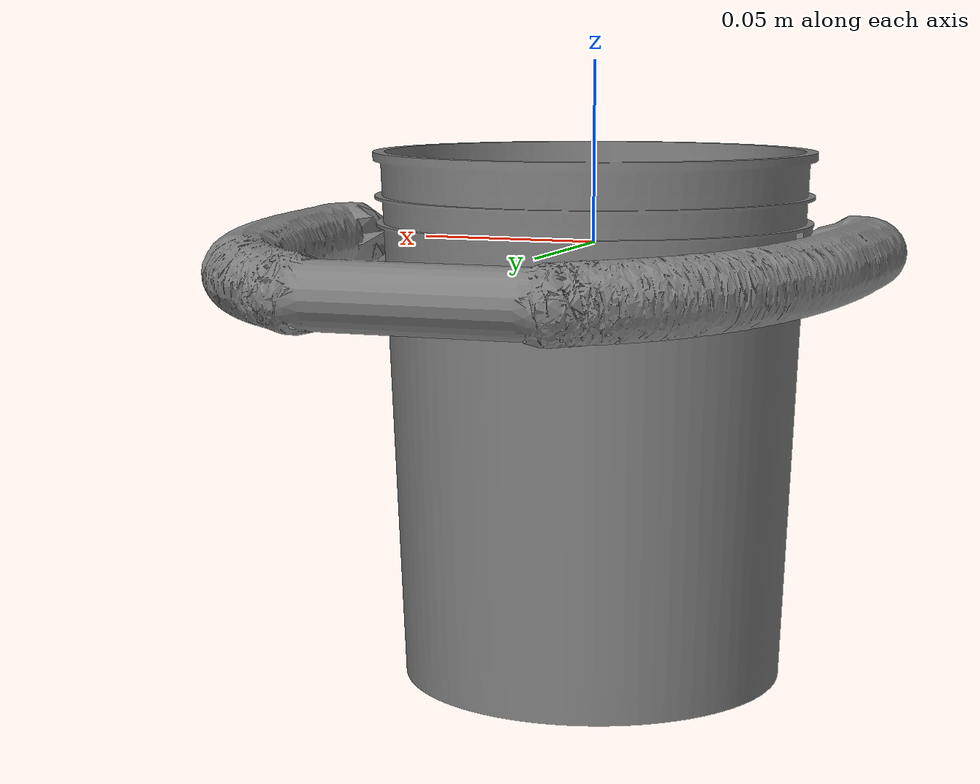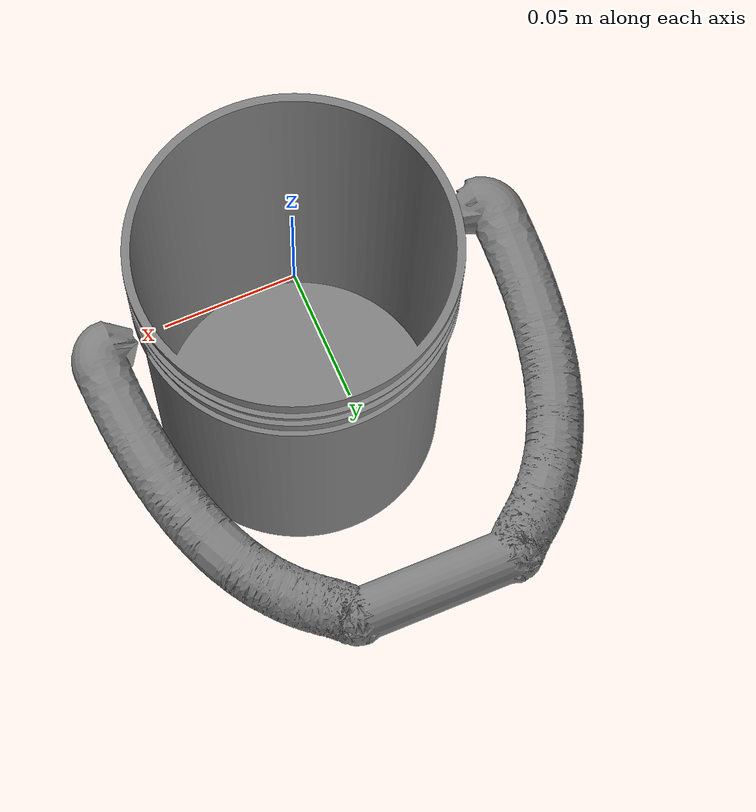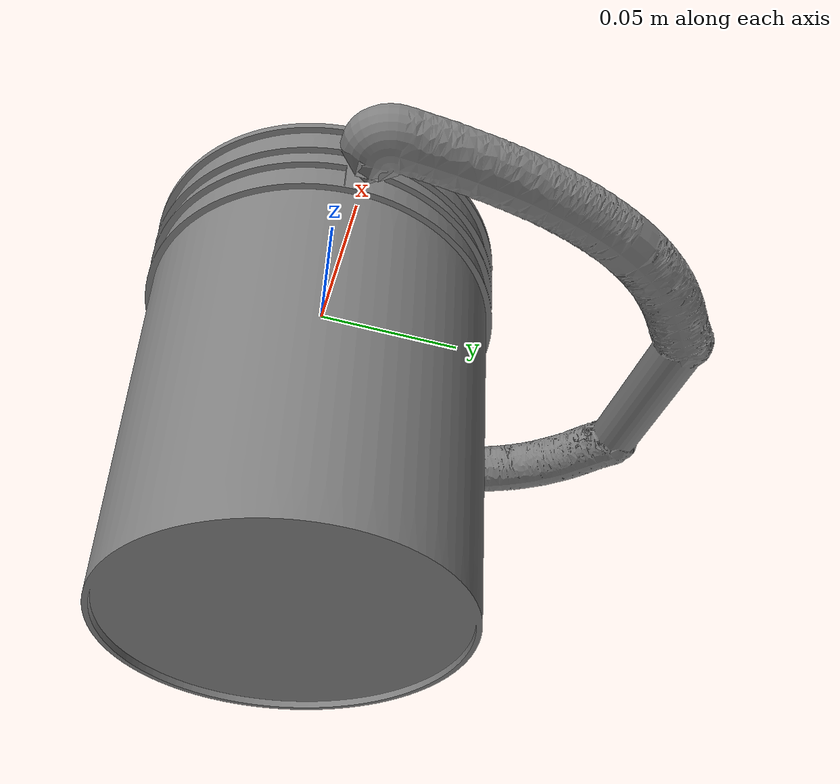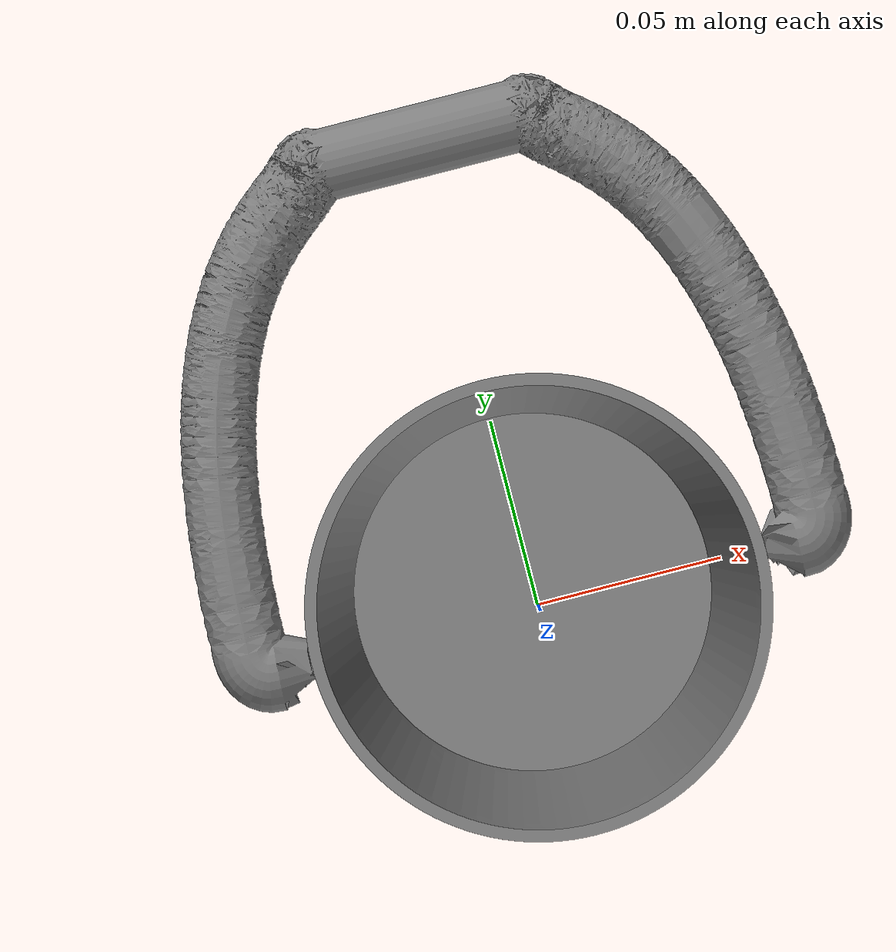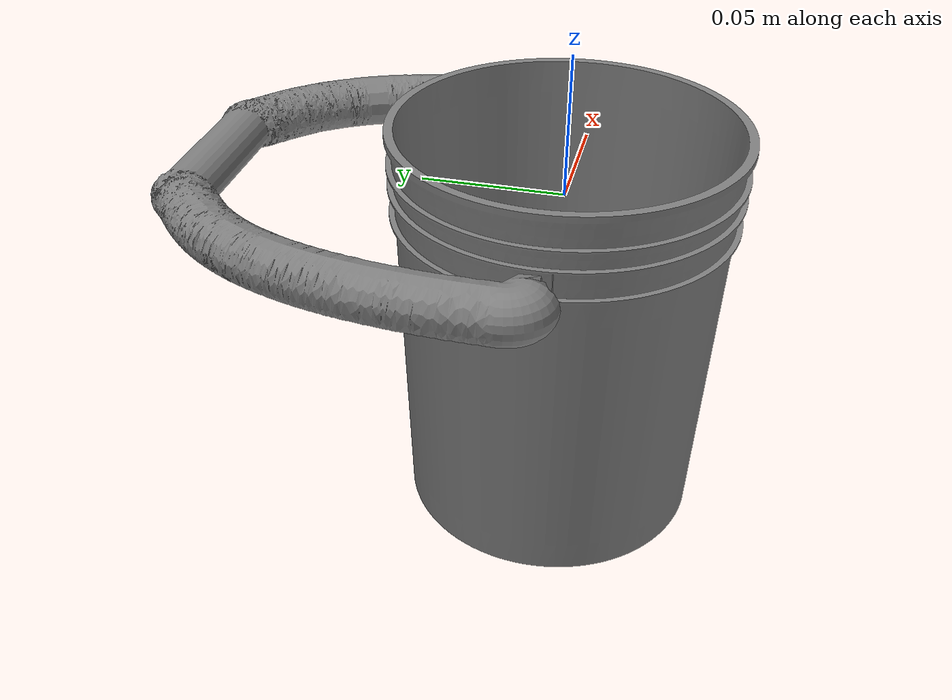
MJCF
<mujoco model="articulated_pail">
    <compiler angle="radian" autolimits="false"/>

    <asset>
        <mesh name="body_mesh" file="../meshes/obj/body.obj" scale="0.4 0.4 0.4"/>
        <mesh name="handle_mesh" file="../meshes/obj/handle_thick.obj" scale="0.4 0.4 0.4"/>
    </asset>

    <worldbody>
        <body name="base_body" pos="0 0 0">
            <inertial pos="0 0 -0.028" mass="7.0" diaginertia="0.1 0.1 0.1"/>

            <!-- Visual mesh (no collision) -->
            <geom type="mesh" mesh="body_mesh" name="visual_body" contype="0" conaffinity="0" group="1"/>

            <!-- Collision: 8 thin box walls forming hollow octagon -->
            <!-- radius=0.057, wall thickness=0.004, center_z=-0.048, half_height=0.0734 -->
            <!-- size="0.002 0.0218 0.0734" = half-thickness, half-tangent-width, half-height -->
            <geom type="box" size="0.002 0.0218 0.0734" pos="0.057 0 -0.048" euler="0 0 0" rgba="0.3 0.3 0.3 0.3" name="collision_wall_0" group="3"/>
            <geom type="box" size="0.002 0.0218 0.0734" pos="0.0403 0.0403 -0.048" euler="0 0 0.7854" rgba="0.3 0.3 0.3 0.3" name="collision_wall_1" group="3"/>
            <geom type="box" size="0.002 0.0218 0.0734" pos="0 0.057 -0.048" euler="0 0 1.5708" rgba="0.3 0.3 0.3 0.3" name="collision_wall_2" group="3"/>
            <geom type="box" size="0.002 0.0218 0.0734" pos="-0.0403 0.0403 -0.048" euler="0 0 2.3562" rgba="0.3 0.3 0.3 0.3" name="collision_wall_3" group="3"/>
            <geom type="box" size="0.002 0.0218 0.0734" pos="-0.057 0 -0.048" euler="0 0 3.1416" rgba="0.3 0.3 0.3 0.3" name="collision_wall_4" group="3"/>
            <geom type="box" size="0.002 0.0218 0.0734" pos="-0.0403 -0.0403 -0.048" euler="0 0 3.9270" rgba="0.3 0.3 0.3 0.3" name="collision_wall_5" group="3"/>
            <geom type="box" size="0.002 0.0218 0.0734" pos="0 -0.057 -0.048" euler="0 0 4.7124" rgba="0.3 0.3 0.3 0.3" name="collision_wall_6" group="3"/>
            <geom type="box" size="0.002 0.0218 0.0734" pos="0.0403 -0.0403 -0.048" euler="0 0 5.4978" rgba="0.3 0.3 0.3 0.3" name="collision_wall_7" group="3"/>

            <!-- Collision: bottom disk -->
            <geom type="cylinder" size="0.052 0.0015" pos="0 0 -0.120" rgba="0.3 0.3 0.3 0.3" name="collision_bottom" group="3"/>

            <!-- CoM visualization -->

            <body name="handle" pos="0 0 0">
                <inertial pos="0 0.094 -0.001" mass="0.5" diaginertia="0.01 0.01 0.01"/>

                <!-- Joint with minimal damping for smooth rotation -->
                <joint name="pail_handle_hinge" type="hinge" pos="0 0 0" axis="1 0 0" range="1.0 2.14" damping="0.1" armature="0.01"/>

                <!-- Visual mesh (no collision) -->
                <geom type="mesh" mesh="handle_mesh" name="visual_handle" contype="0" conaffinity="0" group="1"/>

                <!-- Collision: 8 capsules tracing handle arc from 9 waypoints -->
                <!-- radius=0.005 matches wire cross-section -->
                <!-- Right attach to Right upper -->
                <geom type="capsule" fromto="0.068 0.041 -0.001 0.052 0.100 -0.001" size="0.005" rgba="0.3 0.3 0.3 0.3" name="collision_handle_1" group="3"/>
                <!-- Right upper to Right lower -->
                <geom type="capsule" fromto="0.052 0.100 -0.001 0.036 0.120 -0.001" size="0.005" rgba="0.3 0.3 0.3 0.3" name="collision_handle_2" group="3"/>
                <!-- Right lower to Right-center -->
                <geom type="capsule" fromto="0.036 0.120 -0.001 0.028 0.125 -0.001" size="0.005" rgba="0.3 0.3 0.3 0.3" name="collision_handle_3" group="3"/>
                <!-- Right-center to Center bottom -->
                <geom type="capsule" fromto="0.028 0.125 -0.001 0.0 0.125 -0.001" size="0.005" rgba="0.3 0.3 0.3 0.3" name="collision_handle_4" group="3"/>
                <!-- Center bottom to Left-center -->
                <geom type="capsule" fromto="0.0 0.125 -0.001 -0.028 0.125 -0.001" size="0.005" rgba="0.3 0.3 0.3 0.3" name="collision_handle_5" group="3"/>
                <!-- Left-center to Left lower -->
                <geom type="capsule" fromto="-0.028 0.125 -0.001 -0.036 0.120 -0.001" size="0.005" rgba="0.3 0.3 0.3 0.3" name="collision_handle_6" group="3"/>
                <!-- Left lower to Left upper -->
                <geom type="capsule" fromto="-0.036 0.120 -0.001 -0.052 0.099 -0.001" size="0.005" rgba="0.3 0.3 0.3 0.3" name="collision_handle_7" group="3"/>
                <!-- Left upper to Left attach -->
                <geom type="capsule" fromto="-0.052 0.099 -0.001 -0.067 0.043 -0.001" size="0.005" rgba="0.3 0.3 0.3 0.3" name="collision_handle_8" group="3"/>

                <!-- CoM visualization -->
            </body>
        </body>
    </worldbody>

    <contact>
        <!-- Handle capsule vs wall box pairs (8 capsules x 8 walls = 64) -->
        <pair geom1="collision_wall_0" geom2="collision_handle_1"/>
        <pair geom1="collision_wall_0" geom2="collision_handle_2"/>
        <pair geom1="collision_wall_0" geom2="collision_handle_3"/>
        <pair geom1="collision_wall_0" geom2="collision_handle_4"/>
        <pair geom1="collision_wall_0" geom2="collision_handle_5"/>
        <pair geom1="collision_wall_0" geom2="collision_handle_6"/>
        <pair geom1="collision_wall_0" geom2="collision_handle_7"/>
        <pair geom1="collision_wall_0" geom2="collision_handle_8"/>

        <pair geom1="collision_wall_1" geom2="collision_handle_1"/>
        <pair geom1="collision_wall_1" geom2="collision_handle_2"/>
        <pair geom1="collision_wall_1" geom2="collision_handle_3"/>
        <pair geom1="collision_wall_1" geom2="collision_handle_4"/>
        <pair geom1="collision_wall_1" geom2="collision_handle_5"/>
        <pair geom1="collision_wall_1" geom2="collision_handle_6"/>
        <pair geom1="collision_wall_1" geom2="collision_handle_7"/>
        <pair geom1="collision_wall_1" geom2="collision_handle_8"/>

        <pair geom1="collision_wall_2" geom2="collision_handle_1"/>
        <pair geom1="collision_wall_2" geom2="collision_handle_2"/>
        <pair geom1="collision_wall_2" geom2="collision_handle_3"/>
        <pair geom1="collision_wall_2" geom2="collision_handle_4"/>
        <pair geom1="collision_wall_2" geom2="collision_handle_5"/>
        <pair geom1="collision_wall_2" geom2="collision_handle_6"/>
        <pair geom1="collision_wall_2" geom2="collision_handle_7"/>
        <pair geom1="collision_wall_2" geom2="collision_handle_8"/>

        <pair geom1="collision_wall_3" geom2="collision_handle_1"/>
        <pair geom1="collision_wall_3" geom2="collision_handle_2"/>
        <pair geom1="collision_wall_3" geom2="collision_handle_3"/>
        <pair geom1="collision_wall_3" geom2="collision_handle_4"/>
        <pair geom1="collision_wall_3" geom2="collision_handle_5"/>
        <pair geom1="collision_wall_3" geom2="collision_handle_6"/>
        <pair geom1="collision_wall_3" geom2="collision_handle_7"/>
        <pair geom1="collision_wall_3" geom2="collision_handle_8"/>

        <pair geom1="collision_wall_4" geom2="collision_handle_1"/>
        <pair geom1="collision_wall_4" geom2="collision_handle_2"/>
        <pair geom1="collision_wall_4" geom2="collision_handle_3"/>
        <pair geom1="collision_wall_4" geom2="collision_handle_4"/>
        <pair geom1="collision_wall_4" geom2="collision_handle_5"/>
        <pair geom1="collision_wall_4" geom2="collision_handle_6"/>
        <pair geom1="collision_wall_4" geom2="collision_handle_7"/>
        <pair geom1="collision_wall_4" geom2="collision_handle_8"/>

        <pair geom1="collision_wall_5" geom2="collision_handle_1"/>
        <pair geom1="collision_wall_5" geom2="collision_handle_2"/>
        <pair geom1="collision_wall_5" geom2="collision_handle_3"/>
        <pair geom1="collision_wall_5" geom2="collision_handle_4"/>
        <pair geom1="collision_wall_5" geom2="collision_handle_5"/>
        <pair geom1="collision_wall_5" geom2="collision_handle_6"/>
        <pair geom1="collision_wall_5" geom2="collision_handle_7"/>
        <pair geom1="collision_wall_5" geom2="collision_handle_8"/>

        <pair geom1="collision_wall_6" geom2="collision_handle_1"/>
        <pair geom1="collision_wall_6" geom2="collision_handle_2"/>
        <pair geom1="collision_wall_6" geom2="collision_handle_3"/>
        <pair geom1="collision_wall_6" geom2="collision_handle_4"/>
        <pair geom1="collision_wall_6" geom2="collision_handle_5"/>
        <pair geom1="collision_wall_6" geom2="collision_handle_6"/>
        <pair geom1="collision_wall_6" geom2="collision_handle_7"/>
        <pair geom1="collision_wall_6" geom2="collision_handle_8"/>

        <pair geom1="collision_wall_7" geom2="collision_handle_1"/>
        <pair geom1="collision_wall_7" geom2="collision_handle_2"/>
        <pair geom1="collision_wall_7" geom2="collision_handle_3"/>
        <pair geom1="collision_wall_7" geom2="collision_handle_4"/>
        <pair geom1="collision_wall_7" geom2="collision_handle_5"/>
        <pair geom1="collision_wall_7" geom2="collision_handle_6"/>
        <pair geom1="collision_wall_7" geom2="collision_handle_7"/>
        <pair geom1="collision_wall_7" geom2="collision_handle_8"/>

        <!-- Handle capsule vs bottom disk pairs (8 capsules x 1 disk = 8) -->
        <pair geom1="collision_bottom" geom2="collision_handle_1"/>
        <pair geom1="collision_bottom" geom2="collision_handle_2"/>
        <pair geom1="collision_bottom" geom2="collision_handle_3"/>
        <pair geom1="collision_bottom" geom2="collision_handle_4"/>
        <pair geom1="collision_bottom" geom2="collision_handle_5"/>
        <pair geom1="collision_bottom" geom2="collision_handle_6"/>
        <pair geom1="collision_bottom" geom2="collision_handle_7"/>
        <pair geom1="collision_bottom" geom2="collision_handle_8"/>
    </contact>

</mujoco>
